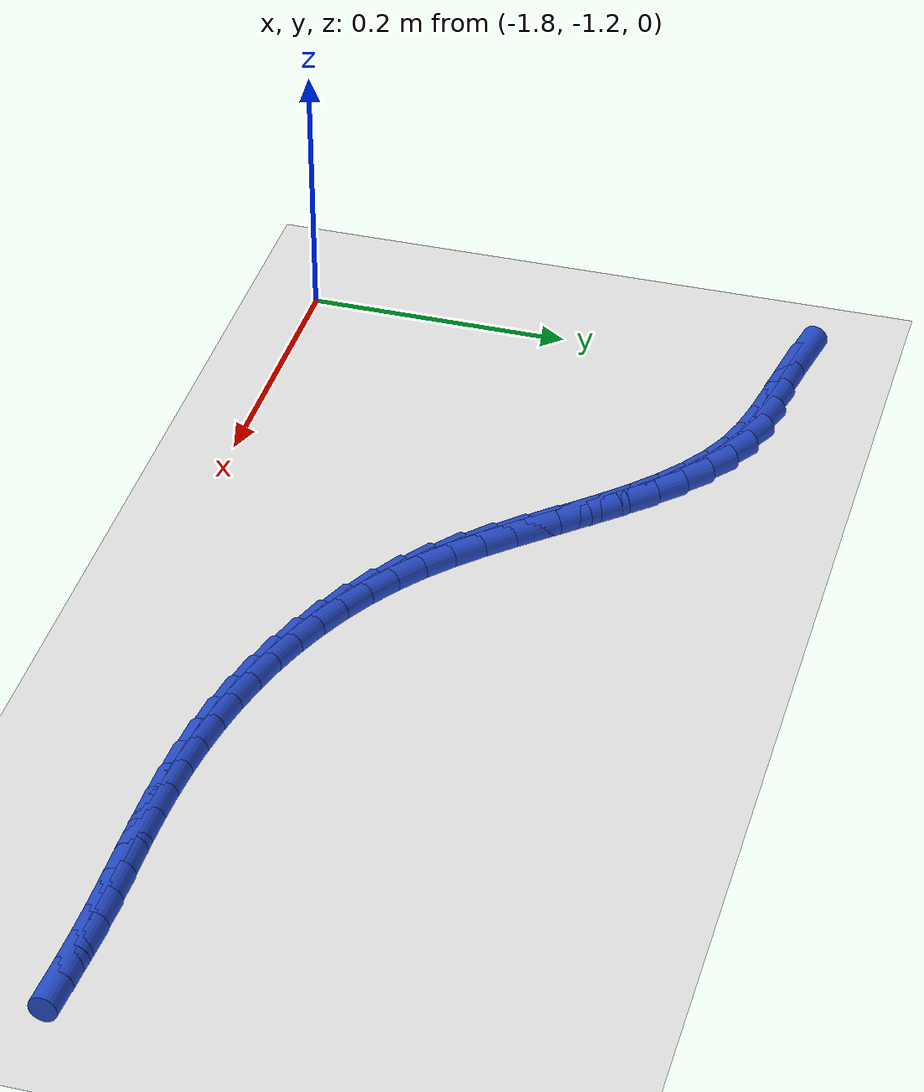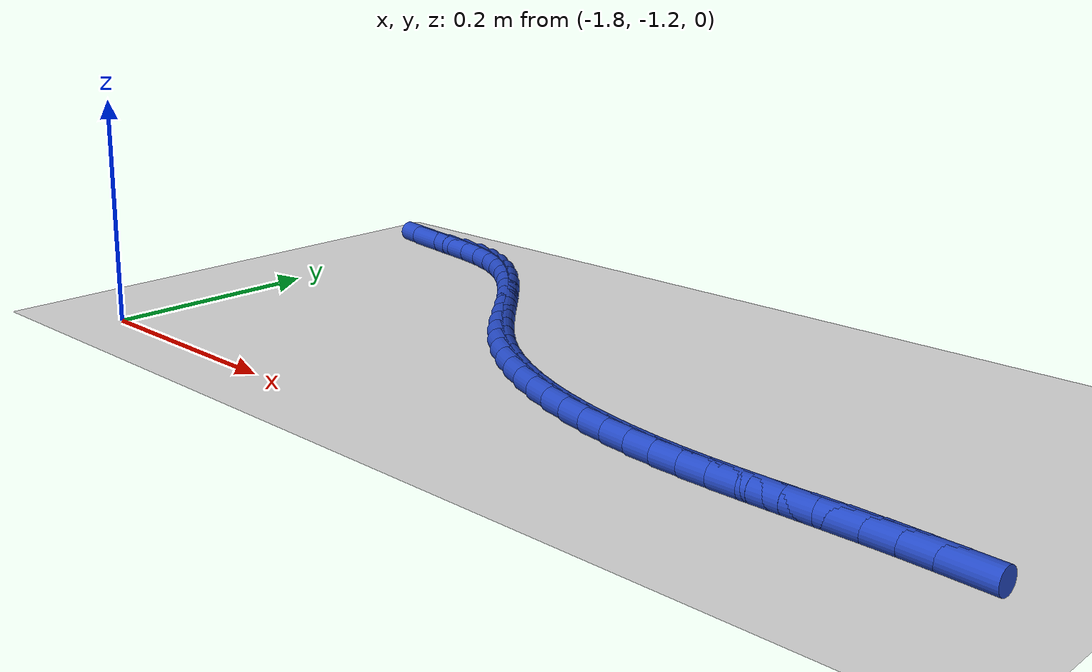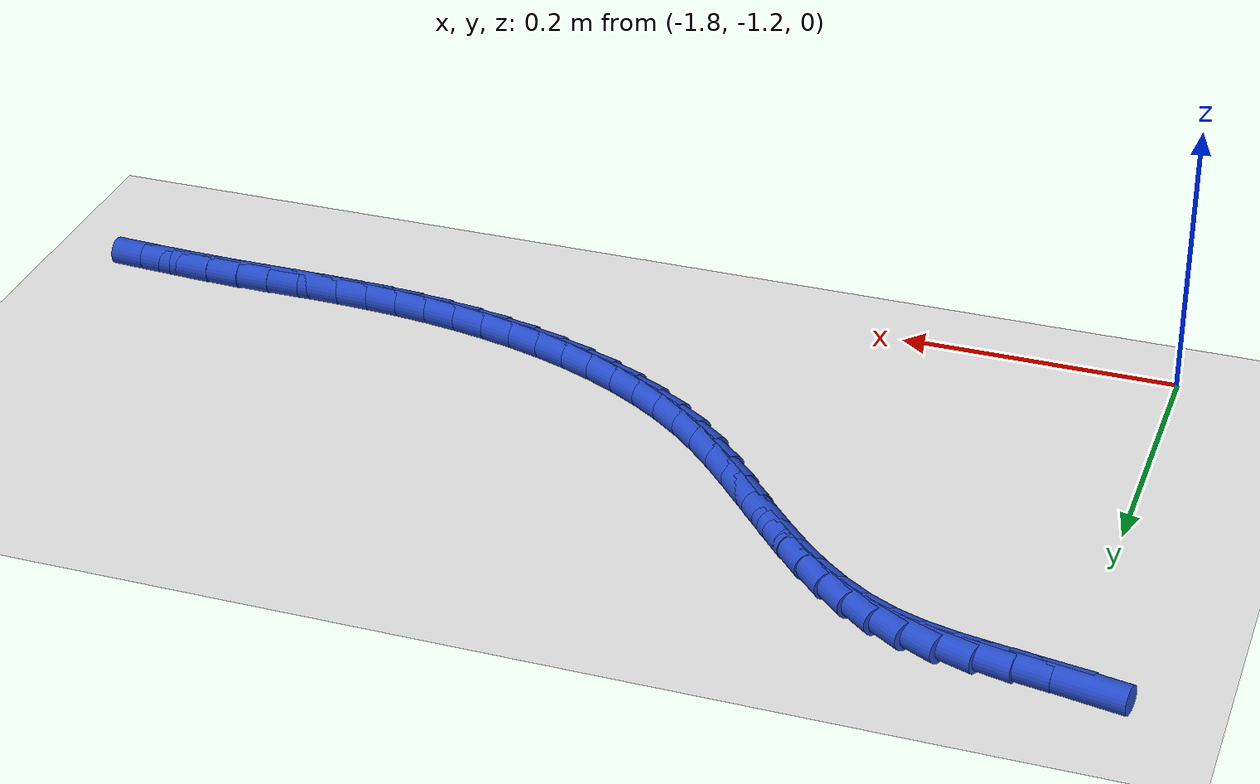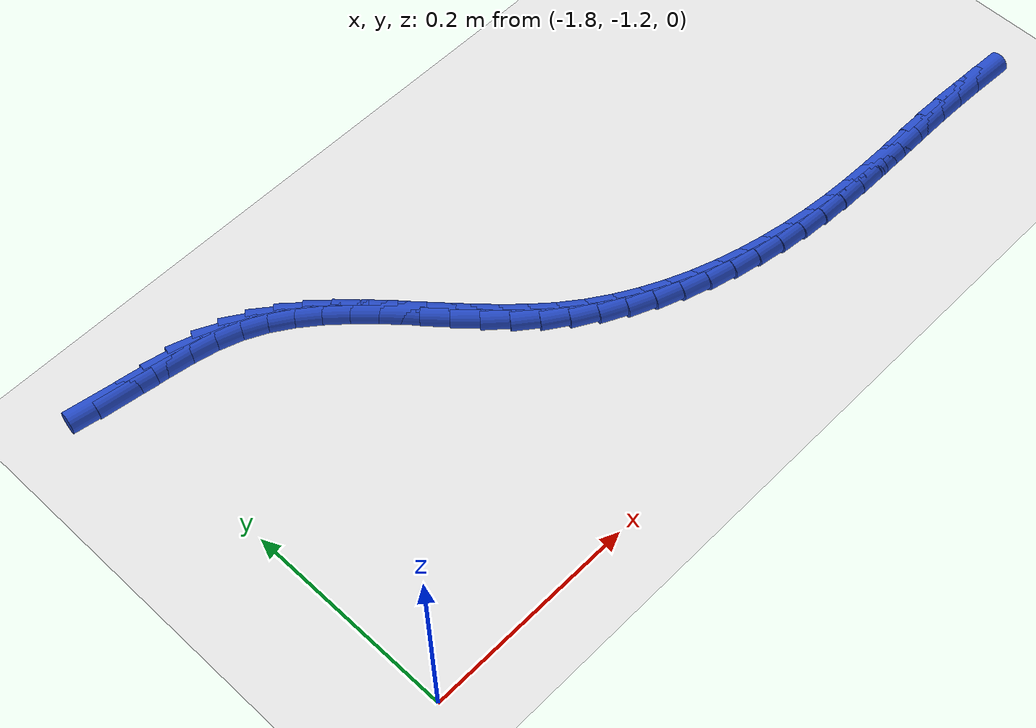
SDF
<sdf version="1.6">
 <world name="default">
  <model name="ground_plane">
   <static>1</static>
   <link name="link">
    <collision name="collision">
     <geometry><plane><normal>0 0 1</normal><size>100 100</size></plane></geometry>
     <surface><friction><ode><mu>100</mu><mu2>50</mu2></ode></friction></surface>
    </collision>
    <visual name="visual">
     <cast_shadows>0</cast_shadows>
     <geometry><plane><normal>0 0 1</normal><size>100 100</size></plane></geometry>
     <material>
      <script><uri>file://media/materials/scripts/gazebo.material</uri><name>Gazebo/WhiteGlow</name></script>
     </material>
    </visual>
   </link>
  </model>
  <model name="line">
   <link name="link_183">
    <pose>-1.8017389779224133 -0.8189227599258957 0.01 0 1.57 -0.17550209276621698</pose>
    <collision name="collision">
     <geometry><cylinder><radius>0.01</radius><length>0.08</length></cylinder></geometry>
    </collision>
    <visual name="visual">
     <material>
      <script><name>Gazebo/Blue</name><uri>file://media/materials/scripts/gazebo.material</uri></script>
     </material>
     <geometry><cylinder><radius>0.01</radius><length>0.08</length></cylinder></geometry>
    </visual>
   </link>
   <link name="link_184">
    <pose>-1.7776728517840288 -0.823190320686795 0.01 0 1.57 -0.1492907736939743</pose>
    <collision name="collision">
     <geometry><cylinder><radius>0.01</radius><length>0.08</length></cylinder></geometry>
    </collision>
    <visual name="visual">
     <material>
      <script><name>Gazebo/Blue</name><uri>file://media/materials/scripts/gazebo.material</uri></script>
     </material>
     <geometry><cylinder><radius>0.01</radius><length>0.08</length></cylinder></geometry>
    </visual>
   </link>
   <link name="link_185">
    <pose>-1.7532590003023374 -0.8268624048981514 0.01 0 1.57 -0.16518136880552323</pose>
    <collision name="collision">
     <geometry><cylinder><radius>0.01</radius><length>0.08</length></cylinder></geometry>
    </collision>
    <visual name="visual">
     <material>
      <script><name>Gazebo/Blue</name><uri>file://media/materials/scripts/gazebo.material</uri></script>
     </material>
     <geometry><cylinder><radius>0.01</radius><length>0.08</length></cylinder></geometry>
    </visual>
   </link>
   <link name="link_186">
    <pose>-1.729041478127829 -0.8308994722946118 0.01 0 1.57 -0.22456168347569241</pose>
    <collision name="collision">
     <geometry><cylinder><radius>0.01</radius><length>0.08</length></cylinder></geometry>
    </collision>
    <visual name="visual">
     <material>
      <script><name>Gazebo/Blue</name><uri>file://media/materials/scripts/gazebo.material</uri></script>
     </material>
     <geometry><cylinder><radius>0.01</radius><length>0.08</length></cylinder></geometry>
    </visual>
   </link>
   <link name="link_187">
    <pose>-1.7055643399109945 -0.8362619826108243 0.01 0 1.57 -0.33149256835393764</pose>
    <collision name="collision">
     <geometry><cylinder><radius>0.01</radius><length>0.08</length></cylinder></geometry>
    </collision>
    <visual name="visual">
     <material>
      <script><name>Gazebo/Blue</name><uri>file://media/materials/scripts/gazebo.material</uri></script>
     </material>
     <geometry><cylinder><radius>0.01</radius><length>0.08</length></cylinder></geometry>
    </visual>
   </link>
   <link name="link_188">
    <pose>-1.6833668929179086 -0.8439021974330674 0.01 0 1.57 -0.465051567029779</pose>
    <collision name="collision">
     <geometry><cylinder><radius>0.01</radius><length>0.08</length></cylinder></geometry>
    </collision>
    <visual name="visual">
     <material>
      <script><name>Gazebo/Blue</name><uri>file://media/materials/scripts/gazebo.material</uri></script>
     </material>
     <geometry><cylinder><radius>0.01</radius><length>0.08</length></cylinder></geometry>
    </visual>
   </link>
   <link name="link_189">
    <pose>-1.6626989537752093 -0.8542724636566305 0.01 0 1.57 -0.5836875298316098</pose>
    <collision name="collision">
     <geometry><cylinder><radius>0.01</radius><length>0.08</length></cylinder></geometry>
    </collision>
    <visual name="visual">
     <material>
      <script><name>Gazebo/Blue</name><uri>file://media/materials/scripts/gazebo.material</uri></script>
     </material>
     <geometry><cylinder><radius>0.01</radius><length>0.08</length></cylinder></geometry>
    </visual>
   </link>
   <link name="link_190">
    <pose>-1.643358935662801 -0.8670456100030026 0.01 0 1.57 -0.6806917249761296</pose>
    <collision name="collision">
     <geometry><cylinder><radius>0.01</radius><length>0.08</length></cylinder></geometry>
    </collision>
    <visual name="visual">
     <material>
      <script><name>Gazebo/Blue</name><uri>file://media/materials/scripts/gazebo.material</uri></script>
     </material>
     <geometry><cylinder><radius>0.01</radius><length>0.08</length></cylinder></geometry>
    </visual>
   </link>
   <link name="link_191">
    <pose>-1.6251061048973452 -0.8818268633807789 0.01 0 1.57 -0.7554733442124318</pose>
    <collision name="collision">
     <geometry><cylinder><radius>0.01</radius><length>0.08</length></cylinder></geometry>
    </collision>
    <visual name="visual">
     <material>
      <script><name>Gazebo/Blue</name><uri>file://media/materials/scripts/gazebo.material</uri></script>
     </material>
     <geometry><cylinder><radius>0.01</radius><length>0.08</length></cylinder></geometry>
    </visual>
   </link>
   <link name="link_192">
    <pose>-1.6076997277955027 -0.8982214506985553 0.01 0 1.57 -0.8090032290381138</pose>
    <collision name="collision">
     <geometry><cylinder><radius>0.01</radius><length>0.08</length></cylinder></geometry>
    </collision>
    <visual name="visual">
     <material>
      <script><name>Gazebo/Blue</name><uri>file://media/materials/scripts/gazebo.material</uri></script>
     </material>
     <geometry><cylinder><radius>0.01</radius><length>0.08</length></cylinder></geometry>
    </visual>
   </link>
   <link name="link_193">
    <pose>-1.5908990706739359 -0.9158345988649278 0.01 0 1.57 -0.8427231714235196</pose>
    <collision name="collision">
     <geometry><cylinder><radius>0.01</radius><length>0.08</length></cylinder></geometry>
    </collision>
    <visual name="visual">
     <material>
      <script><name>Gazebo/Blue</name><uri>file://media/materials/scripts/gazebo.material</uri></script>
     </material>
     <geometry><cylinder><radius>0.01</radius><length>0.08</length></cylinder></geometry>
    </visual>
   </link>
   <link name="link_194">
    <pose>-1.5744633998493052 -0.9342715347884917 0.01 0 1.57 -0.8578895465539613</pose>
    <collision name="collision">
     <geometry><cylinder><radius>0.01</radius><length>0.08</length></cylinder></geometry>
    </collision>
    <visual name="visual">
     <material>
      <script><name>Gazebo/Blue</name><uri>file://media/materials/scripts/gazebo.material</uri></script>
     </material>
     <geometry><cylinder><radius>0.01</radius><length>0.08</length></cylinder></geometry>
    </visual>
   </link>
   <link name="link_195">
    <pose>-1.558151981638273 -0.9531374853778427 0.01 0 1.57 -0.8552651933053437</pose>
    <collision name="collision">
     <geometry><cylinder><radius>0.01</radius><length>0.08</length></cylinder></geometry>
    </collision>
    <visual name="visual">
     <material>
      <script><name>Gazebo/Blue</name><uri>file://media/materials/scripts/gazebo.material</uri></script>
     </material>
     <geometry><cylinder><radius>0.01</radius><length>0.08</length></cylinder></geometry>
    </visual>
   </link>
   <link name="link_196">
    <pose>-1.5417240823575002 -0.9720376775415769 0.01 0 1.57 -0.8350263898266616</pose>
    <collision name="collision">
     <geometry><cylinder><radius>0.01</radius><length>0.08</length></cylinder></geometry>
    </collision>
    <visual name="visual">
     <material>
      <script><name>Gazebo/Blue</name><uri>file://media/materials/scripts/gazebo.material</uri></script>
     </material>
     <geometry><cylinder><radius>0.01</radius><length>0.08</length></cylinder></geometry>
    </visual>
   </link>
   <link name="link_197">
    <pose>-1.524938968323648 -0.9905773381882896 0.01 0 1.57 -0.7968086157125229</pose>
    <collision name="collision">
     <geometry><cylinder><radius>0.01</radius><length>0.08</length></cylinder></geometry>
    </collision>
    <visual name="visual">
     <material>
      <script><name>Gazebo/Blue</name><uri>file://media/materials/scripts/gazebo.material</uri></script>
     </material>
     <geometry><cylinder><radius>0.01</radius><length>0.08</length></cylinder></geometry>
    </visual>
   </link>
   <link name="link_198">
    <pose>-1.5075559058533783 -1.0083616942265765 0.01 0 1.57 -0.7398860853911681</pose>
    <collision name="collision">
     <geometry><cylinder><radius>0.01</radius><length>0.08</length></cylinder></geometry>
    </collision>
    <visual name="visual">
     <material>
      <script><name>Gazebo/Blue</name><uri>file://media/materials/scripts/gazebo.material</uri></script>
     </material>
     <geometry><cylinder><radius>0.01</radius><length>0.08</length></cylinder></geometry>
    </visual>
   </link>
   <link name="link_199">
    <pose>-1.4893341612633524 -1.0249959725650335 0.01 0 1.57 -0.6668404930998398</pose>
    <collision name="collision">
     <geometry><cylinder><radius>0.01</radius><length>0.08</length></cylinder></geometry>
    </collision>
    <visual name="visual">
     <material>
      <script><name>Gazebo/Blue</name><uri>file://media/materials/scripts/gazebo.material</uri></script>
     </material>
     <geometry><cylinder><radius>0.01</radius><length>0.08</length></cylinder></geometry>
    </visual>
   </link>
   <link name="link_200">
    <pose>-1.4700826358683914 -1.0401493174426149 0.01 0 1.57 -0.5930485729017329</pose>
    <collision name="collision">
     <geometry><cylinder><radius>0.01</radius><length>0.08</length></cylinder></geometry>
    </collision>
    <visual name="visual">
     <material>
      <script><name>Gazebo/Blue</name><uri>file://media/materials/scripts/gazebo.material</uri></script>
     </material>
     <geometry><cylinder><radius>0.01</radius><length>0.08</length></cylinder></geometry>
    </visual>
   </link>
   <link name="link_201">
    <pose>-1.449842900863718 -1.0537904930874185 0.01 0 1.57 -0.5233451049258699</pose>
    <collision name="collision">
     <geometry><cylinder><radius>0.01</radius><length>0.08</length></cylinder></geometry>
    </collision>
    <visual name="visual">
     <material>
      <script><name>Gazebo/Blue</name><uri>file://media/materials/scripts/gazebo.material</uri></script>
     </material>
     <geometry><cylinder><radius>0.01</radius><length>0.08</length></cylinder></geometry>
    </visual>
   </link>
   <link name="link_202">
    <pose>-1.4287246450778999 -1.0659759820197836 0.01 0 1.57 -0.4578836531101668</pose>
    <collision name="collision">
     <geometry><cylinder><radius>0.01</radius><length>0.08</length></cylinder></geometry>
    </collision>
    <visual name="visual">
     <material>
      <script><name>Gazebo/Blue</name><uri>file://media/materials/scripts/gazebo.material</uri></script>
     </material>
     <geometry><cylinder><radius>0.01</radius><length>0.08</length></cylinder></geometry>
    </visual>
   </link>
   <link name="link_203">
    <pose>-1.4068375659325314 -1.0767622778256911 0.01 0 1.57 -0.39665449425448274</pose>
    <collision name="collision">
     <geometry><cylinder><radius>0.01</radius><length>0.08</length></cylinder></geometry>
    </collision>
    <visual name="visual">
     <material>
      <script><name>Gazebo/Blue</name><uri>file://media/materials/scripts/gazebo.material</uri></script>
     </material>
     <geometry><cylinder><radius>0.01</radius><length>0.08</length></cylinder></geometry>
    </visual>
   </link>
   <link name="link_204">
    <pose>-1.3842913608492058 -1.0862058740911225 0.01 0 1.57 -0.3395232317059367</pose>
    <collision name="collision">
     <geometry><cylinder><radius>0.01</radius><length>0.08</length></cylinder></geometry>
    </collision>
    <visual name="visual">
     <material>
      <script><name>Gazebo/Blue</name><uri>file://media/materials/scripts/gazebo.material</uri></script>
     </material>
     <geometry><cylinder><radius>0.01</radius><length>0.08</length></cylinder></geometry>
    </visual>
   </link>
   <link name="link_205">
    <pose>-1.361195727249518 -1.094363264402059 0.01 0 1.57 -0.28626697660239586</pose>
    <collision name="collision">
     <geometry><cylinder><radius>0.01</radius><length>0.08</length></cylinder></geometry>
    </collision>
    <visual name="visual">
     <material>
      <script><name>Gazebo/Blue</name><uri>file://media/materials/scripts/gazebo.material</uri></script>
     </material>
     <geometry><cylinder><radius>0.01</radius><length>0.08</length></cylinder></geometry>
    </visual>
   </link>
   <link name="link_206">
    <pose>-1.337660362555061 -1.1012909423444828 0.01 0 1.57 -0.23660507122678207</pose>
    <collision name="collision">
     <geometry><cylinder><radius>0.01</radius><length>0.08</length></cylinder></geometry>
    </collision>
    <visual name="visual">
     <material>
      <script><name>Gazebo/Blue</name><uri>file://media/materials/scripts/gazebo.material</uri></script>
     </material>
     <geometry><cylinder><radius>0.01</radius><length>0.08</length></cylinder></geometry>
    </visual>
   </link>
   <link name="link_207">
    <pose>-1.3137949641874285 -1.107045401504375 0.01 0 1.57 -0.19022297498009252</pose>
    <collision name="collision">
     <geometry><cylinder><radius>0.01</radius><length>0.08</length></cylinder></geometry>
    </collision>
    <visual name="visual">
     <material>
      <script><name>Gazebo/Blue</name><uri>file://media/materials/scripts/gazebo.material</uri></script>
     </material>
     <geometry><cylinder><radius>0.01</radius><length>0.08</length></cylinder></geometry>
    </visual>
   </link>
   <link name="link_208">
    <pose>-1.2897092295682147 -1.111683135467717 0.01 0 1.57 -0.14678936981022278</pose>
    <collision name="collision">
     <geometry><cylinder><radius>0.01</radius><length>0.08</length></cylinder></geometry>
    </collision>
    <visual name="visual">
     <material>
      <script><name>Gazebo/Blue</name><uri>file://media/materials/scripts/gazebo.material</uri></script>
     </material>
     <geometry><cylinder><radius>0.01</radius><length>0.08</length></cylinder></geometry>
    </visual>
   </link>
   <link name="link_209">
    <pose>-1.265512856119013 -1.1152606378204901 0.01 0 1.57 -0.10596727240135881</pose>
    <collision name="collision">
     <geometry><cylinder><radius>0.01</radius><length>0.08</length></cylinder></geometry>
    </collision>
    <visual name="visual">
     <material>
      <script><name>Gazebo/Blue</name><uri>file://media/materials/scripts/gazebo.material</uri></script>
     </material>
     <geometry><cylinder><radius>0.01</radius><length>0.08</length></cylinder></geometry>
    </visual>
   </link>
   <link name="link_210">
    <pose>-1.2413155412614174 -1.1178344021486764 0.01 0 1.57 -0.06783380636194504</pose>
    <collision name="collision">
     <geometry><cylinder><radius>0.01</radius><length>0.08</length></cylinder></geometry>
    </collision>
    <visual name="visual">
     <material>
      <script><name>Gazebo/Blue</name><uri>file://media/materials/scripts/gazebo.material</uri></script>
     </material>
     <geometry><cylinder><radius>0.01</radius><length>0.08</length></cylinder></geometry>
    </visual>
   </link>
   <link name="link_211">
    <pose>-1.2172169111715367 -1.1194716158986997 0.01 0 1.57 -0.036305509378531914</pose>
    <collision name="collision">
     <geometry><cylinder><radius>0.01</radius><length>0.08</length></cylinder></geometry>
    </collision>
    <visual name="visual">
     <material>
      <script><name>Gazebo/Blue</name><uri>file://media/materials/scripts/gazebo.material</uri></script>
     </material>
     <geometry><cylinder><radius>0.01</radius><length>0.08</length></cylinder></geometry>
    </visual>
   </link>
   <link name="link_212">
    <pose>-1.193218840561588 -1.1203432610788877 0.01 0 1.57 -0.014003451259719859</pose>
    <collision name="collision">
     <geometry><cylinder><radius>0.01</radius><length>0.08</length></cylinder></geometry>
    </collision>
    <visual name="visual">
     <material>
      <script><name>Gazebo/Blue</name><uri>file://media/materials/scripts/gazebo.material</uri></script>
     </material>
     <geometry><cylinder><radius>0.01</radius><length>0.08</length></cylinder></geometry>
    </visual>
   </link>
   <link name="link_213">
    <pose>-1.1692682473592413 -1.1206786739681724 0.01 0 1.57 -0.0012174707281229877</pose>
    <collision name="collision">
     <geometry><cylinder><radius>0.01</radius><length>0.08</length></cylinder></geometry>
    </collision>
    <visual name="visual">
     <material>
      <script><name>Gazebo/Blue</name><uri>file://media/materials/scripts/gazebo.material</uri></script>
     </material>
     <geometry><cylinder><radius>0.01</radius><length>0.08</length></cylinder></geometry>
    </visual>
   </link>
   <link name="link_214">
    <pose>-1.1453114374757887 -1.1207078406973554 0.01 0 1.57 0.0019608522095911365</pose>
    <collision name="collision">
     <geometry><cylinder><radius>0.01</radius><length>0.08</length></cylinder></geometry>
    </collision>
    <visual name="visual">
     <material>
      <script><name>Gazebo/Blue</name><uri>file://media/materials/scripts/gazebo.material</uri></script>
     </material>
     <geometry><cylinder><radius>0.01</radius><length>0.08</length></cylinder></geometry>
    </visual>
   </link>
   <link name="link_215">
    <pose>-1.1212947168225238 -1.1206607473972383 0.01 0 1.57 -0.004419008240773382</pose>
    <collision name="collision">
     <geometry><cylinder><radius>0.01</radius><length>0.08</length></cylinder></geometry>
    </collision>
    <visual name="visual">
     <material>
      <script><name>Gazebo/Blue</name><uri>file://media/materials/scripts/gazebo.material</uri></script>
     </material>
     <geometry><cylinder><radius>0.01</radius><length>0.08</length></cylinder></geometry>
    </visual>
   </link>
   <link name="link_216">
    <pose>-1.09716439131074 -1.1207673801986238 0.01 0 1.57 -0.0201768633554755</pose>
    <collision name="collision">
     <geometry><cylinder><radius>0.01</radius><length>0.08</length></cylinder></geometry>
    </collision>
    <visual name="visual">
     <material>
      <script><name>Gazebo/Blue</name><uri>file://media/materials/scripts/gazebo.material</uri></script>
     </material>
     <geometry><cylinder><radius>0.01</radius><length>0.08</length></cylinder></geometry>
    </visual>
   </link>
   <link name="link_217">
    <pose>-1.0728667748510328 -1.1212576964244632 0.01 0 1.57 -0.04143729792705136</pose>
    <collision name="collision">
     <geometry><cylinder><radius>0.01</radius><length>0.08</length></cylinder></geometry>
    </collision>
    <visual name="visual">
     <material>
      <script><name>Gazebo/Blue</name><uri>file://media/materials/scripts/gazebo.material</uri></script>
     </material>
     <geometry><cylinder><radius>0.01</radius><length>0.08</length></cylinder></geometry>
    </visual>
   </link>
   <link name="link_218">
    <pose>-1.0483727304823263 -1.1222732447539252 0.01 0 1.57 -0.05670039435155125</pose>
    <collision name="collision">
     <geometry><cylinder><radius>0.01</radius><length>0.08</length></cylinder></geometry>
    </collision>
    <visual name="visual">
     <material>
      <script><name>Gazebo/Blue</name><uri>file://media/materials/scripts/gazebo.material</uri></script>
     </material>
     <geometry><cylinder><radius>0.01</radius><length>0.08</length></cylinder></geometry>
    </visual>
   </link>
  </model>
 </world>
</sdf>
